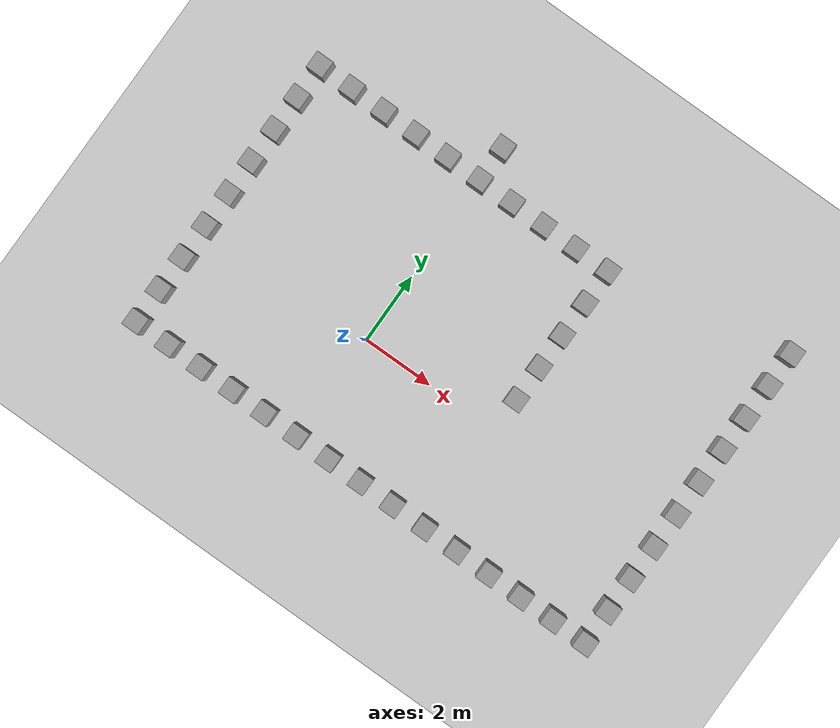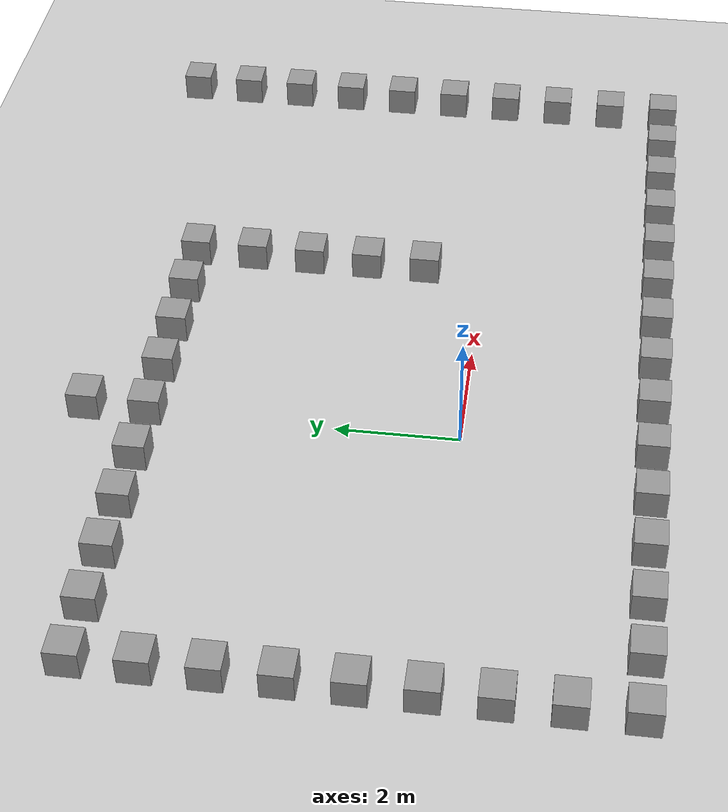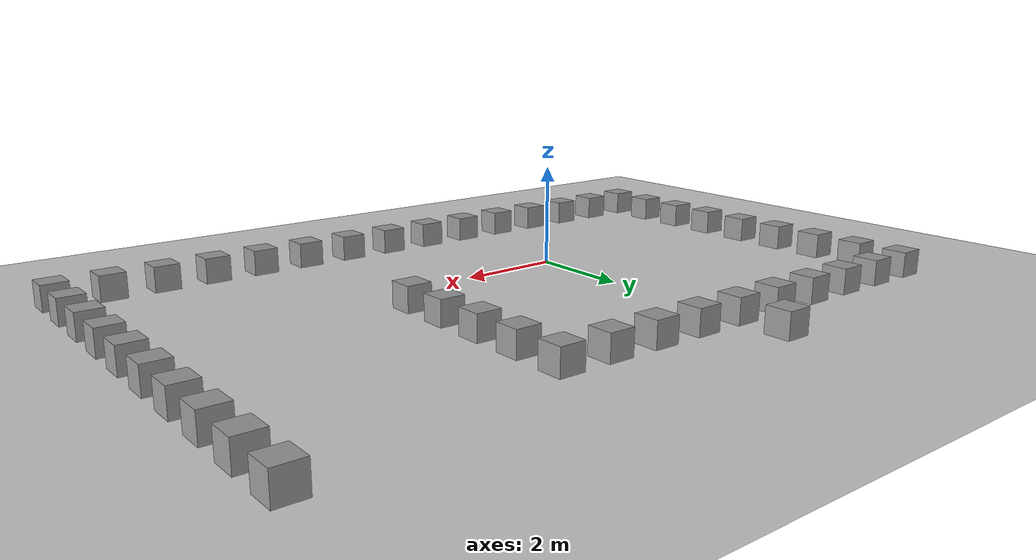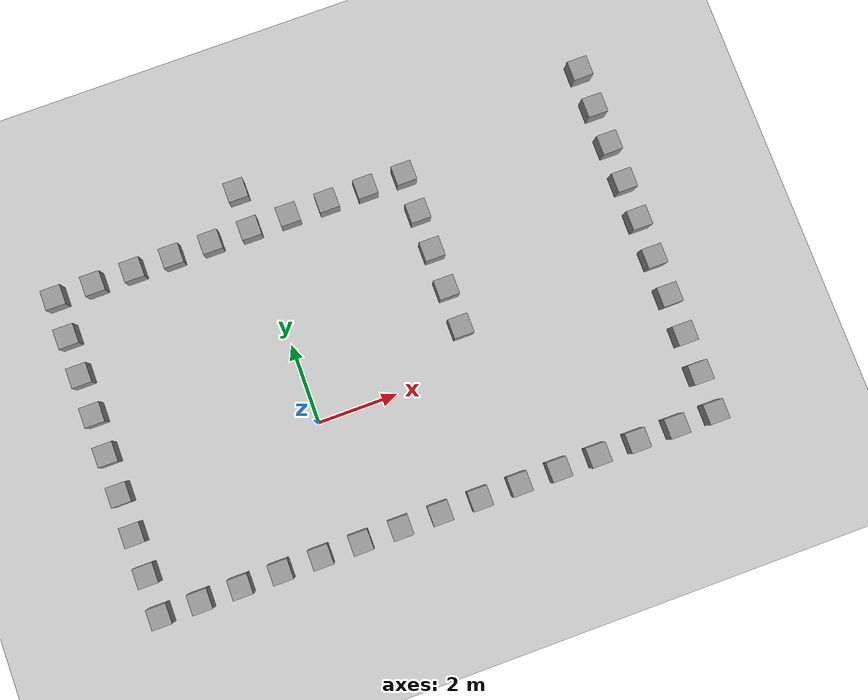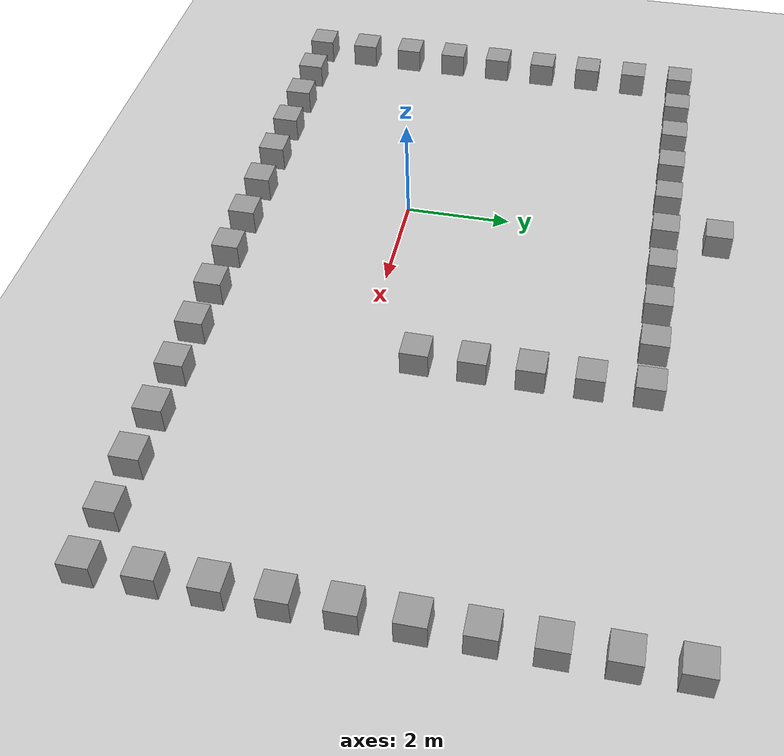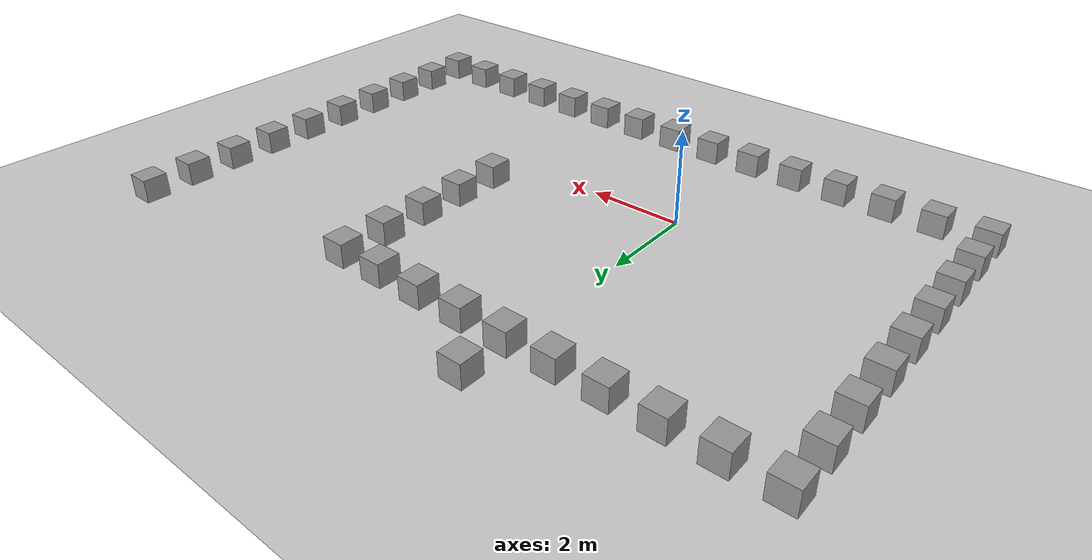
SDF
<sdf version="1.4">
 <world name="default">
  <model name="ground_plane">
   <static>1</static>
   <link name="link">
    <collision name="collision">
     <geometry><plane><normal>0 0 1</normal><size>100 100</size></plane></geometry>
     <surface><friction><ode><mu>100</mu><mu2>50</mu2></ode></friction></surface>
    </collision>
    <visual name="visual">
     <cast_shadows>0</cast_shadows>
     <geometry><plane><normal>0 0 1</normal><size>100 100</size></plane></geometry>
     <material>
      <script><uri>file://media/materials/scripts/gazebo.material</uri><name>Gazebo/Grey</name></script>
     </material>
    </visual>
    <velocity_decay><linear>0</linear><angular>0</angular></velocity_decay>
   </link>
  </model>
  <model name="unit_box_1">
   <pose>-5 5 0.25 0 -0 0</pose>
   <static>true</static>
   <link name="link">
    <inertial>
     <mass>1</mass>
     <inertia><ixx>1</ixx><ixy>0</ixy><ixz>0</ixz><iyy>1</iyy><iyz>0</iyz><izz>1</izz></inertia>
    </inertial>
    <collision name="collision"><geometry><box><size>0.5 0.5 0.5</size></box></geometry></collision>
    <visual name="visual">
     <geometry><box><size>0.5 0.5 0.5</size></box></geometry>
     <material>
      <script><uri>file://media/materials/scripts/gazebo.material</uri><name>Gazebo/Grey</name></script>
     </material>
    </visual>
    <velocity_decay><linear>0</linear><angular>0</angular></velocity_decay>
   </link>
   <static>0</static>
  </model>
  <model name="unit_box_2">
   <pose>-4 5 0.25 0 -0 0</pose>
   <static>true</static>
   <link name="link">
    <inertial>
     <mass>1</mass>
     <inertia><ixx>1</ixx><ixy>0</ixy><ixz>0</ixz><iyy>1</iyy><iyz>0</iyz><izz>1</izz></inertia>
    </inertial>
    <collision name="collision"><geometry><box><size>0.5 0.5 0.5</size></box></geometry></collision>
    <visual name="visual">
     <geometry><box><size>0.5 0.5 0.5</size></box></geometry>
     <material>
      <script><uri>file://media/materials/scripts/gazebo.material</uri><name>Gazebo/Grey</name></script>
     </material>
    </visual>
    <velocity_decay><linear>0</linear><angular>0</angular></velocity_decay>
   </link>
   <static>0</static>
  </model>
  <model name="unit_box_3">
   <pose>-3 5 0.25 0 -0 0</pose>
   <static>true</static>
   <link name="link">
    <inertial>
     <mass>1</mass>
     <inertia><ixx>1</ixx><ixy>0</ixy><ixz>0</ixz><iyy>1</iyy><iyz>0</iyz><izz>1</izz></inertia>
    </inertial>
    <collision name="collision"><geometry><box><size>0.5 0.5 0.5</size></box></geometry></collision>
    <visual name="visual">
     <geometry><box><size>0.5 0.5 0.5</size></box></geometry>
     <material>
      <script><uri>file://media/materials/scripts/gazebo.material</uri><name>Gazebo/Grey</name></script>
     </material>
    </visual>
    <velocity_decay><linear>0</linear><angular>0</angular></velocity_decay>
   </link>
   <static>0</static>
  </model>
  <model name="unit_box_4">
   <pose>-2 5 0.25 0 -0 0</pose>
   <static>true</static>
   <link name="link">
    <inertial>
     <mass>1</mass>
     <inertia><ixx>1</ixx><ixy>0</ixy><ixz>0</ixz><iyy>1</iyy><iyz>0</iyz><izz>1</izz></inertia>
    </inertial>
    <collision name="collision"><geometry><box><size>0.5 0.5 0.5</size></box></geometry></collision>
    <visual name="visual">
     <geometry><box><size>0.5 0.5 0.5</size></box></geometry>
     <material>
      <script><uri>file://media/materials/scripts/gazebo.material</uri><name>Gazebo/Grey</name></script>
     </material>
    </visual>
    <velocity_decay><linear>0</linear><angular>0</angular></velocity_decay>
   </link>
   <static>0</static>
  </model>
  <model name="unit_box_5">
   <pose>-1 5 0.25 0 -0 0</pose>
   <static>true</static>
   <link name="link">
    <inertial>
     <mass>1</mass>
     <inertia><ixx>1</ixx><ixy>0</ixy><ixz>0</ixz><iyy>1</iyy><iyz>0</iyz><izz>1</izz></inertia>
    </inertial>
    <collision name="collision"><geometry><box><size>0.5 0.5 0.5</size></box></geometry></collision>
    <visual name="visual">
     <geometry><box><size>0.5 0.5 0.5</size></box></geometry>
     <material>
      <script><uri>file://media/materials/scripts/gazebo.material</uri><name>Gazebo/Grey</name></script>
     </material>
    </visual>
    <velocity_decay><linear>0</linear><angular>0</angular></velocity_decay>
   </link>
   <static>0</static>
  </model>
  <model name="unit_box_6">
   <pose>0 5 0.25 0 -0 0</pose>
   <static>true</static>
   <link name="link">
    <inertial>
     <mass>1</mass>
     <inertia><ixx>1</ixx><ixy>0</ixy><ixz>0</ixz><iyy>1</iyy><iyz>0</iyz><izz>1</izz></inertia>
    </inertial>
    <collision name="collision"><geometry><box><size>0.5 0.5 0.5</size></box></geometry></collision>
    <visual name="visual">
     <geometry><box><size>0.5 0.5 0.5</size></box></geometry>
     <material>
      <script><uri>file://media/materials/scripts/gazebo.material</uri><name>Gazebo/Grey</name></script>
     </material>
    </visual>
    <velocity_decay><linear>0</linear><angular>0</angular></velocity_decay>
   </link>
   <static>0</static>
  </model>
  <model name="unit_box_7">
   <pose>1 5 0.25 0 -0 0</pose>
   <static>true</static>
   <link name="link">
    <inertial>
     <mass>1</mass>
     <inertia><ixx>1</ixx><ixy>0</ixy><ixz>0</ixz><iyy>1</iyy><iyz>0</iyz><izz>1</izz></inertia>
    </inertial>
    <collision name="collision"><geometry><box><size>0.5 0.5 0.5</size></box></geometry></collision>
    <visual name="visual">
     <geometry><box><size>0.5 0.5 0.5</size></box></geometry>
     <material>
      <script><uri>file://media/materials/scripts/gazebo.material</uri><name>Gazebo/Grey</name></script>
     </material>
    </visual>
    <velocity_decay><linear>0</linear><angular>0</angular></velocity_decay>
   </link>
   <static>0</static>
  </model>
  <model name="unit_box_8">
   <pose>2 5 0.25 0 -0 0</pose>
   <static>true</static>
   <link name="link">
    <inertial>
     <mass>1</mass>
     <inertia><ixx>1</ixx><ixy>0</ixy><ixz>0</ixz><iyy>1</iyy><iyz>0</iyz><izz>1</izz></inertia>
    </inertial>
    <collision name="collision"><geometry><box><size>0.5 0.5 0.5</size></box></geometry></collision>
    <visual name="visual">
     <geometry><box><size>0.5 0.5 0.5</size></box></geometry>
     <material>
      <script><uri>file://media/materials/scripts/gazebo.material</uri><name>Gazebo/Grey</name></script>
     </material>
    </visual>
    <velocity_decay><linear>0</linear><angular>0</angular></velocity_decay>
   </link>
   <static>0</static>
  </model>
  <model name="unit_box_9">
   <pose>3 5 0.25 0 -0 0</pose>
   <static>true</static>
   <link name="link">
    <inertial>
     <mass>1</mass>
     <inertia><ixx>1</ixx><ixy>0</ixy><ixz>0</ixz><iyy>1</iyy><iyz>0</iyz><izz>1</izz></inertia>
    </inertial>
    <collision name="collision"><geometry><box><size>0.5 0.5 0.5</size></box></geometry></collision>
    <visual name="visual">
     <geometry><box><size>0.5 0.5 0.5</size></box></geometry>
     <material>
      <script><uri>file://media/materials/scripts/gazebo.material</uri><name>Gazebo/Grey</name></script>
     </material>
    </visual>
    <velocity_decay><linear>0</linear><angular>0</angular></velocity_decay>
   </link>
   <static>0</static>
  </model>
  <model name="unit_box_10">
   <pose>4 5 0.25 0 -0 0</pose>
   <static>true</static>
   <link name="link">
    <inertial>
     <mass>1</mass>
     <inertia><ixx>1</ixx><ixy>0</ixy><ixz>0</ixz><iyy>1</iyy><iyz>0</iyz><izz>1</izz></inertia>
    </inertial>
    <collision name="collision"><geometry><box><size>0.5 0.5 0.5</size></box></geometry></collision>
    <visual name="visual">
     <geometry><box><size>0.5 0.5 0.5</size></box></geometry>
     <material>
      <script><uri>file://media/materials/scripts/gazebo.material</uri><name>Gazebo/Grey</name></script>
     </material>
    </visual>
    <velocity_decay><linear>0</linear><angular>0</angular></velocity_decay>
   </link>
   <static>0</static>
  </model>
  <model name="unit_box_11">
   <pose>4 4 0.25 0 -0 0</pose>
   <static>true</static>
   <link name="link">
    <inertial>
     <mass>1</mass>
     <inertia><ixx>1</ixx><ixy>0</ixy><ixz>0</ixz><iyy>1</iyy><iyz>0</iyz><izz>1</izz></inertia>
    </inertial>
    <collision name="collision"><geometry><box><size>0.5 0.5 0.5</size></box></geometry></collision>
    <visual name="visual">
     <geometry><box><size>0.5 0.5 0.5</size></box></geometry>
     <material>
      <script><uri>file://media/materials/scripts/gazebo.material</uri><name>Gazebo/Grey</name></script>
     </material>
    </visual>
    <velocity_decay><linear>0</linear><angular>0</angular></velocity_decay>
   </link>
   <static>0</static>
  </model>
  <model name="unit_box_12">
   <pose>4 3 0.25 0 -0 0</pose>
   <static>true</static>
   <link name="link">
    <inertial>
     <mass>1</mass>
     <inertia><ixx>1</ixx><ixy>0</ixy><ixz>0</ixz><iyy>1</iyy><iyz>0</iyz><izz>1</izz></inertia>
    </inertial>
    <collision name="collision"><geometry><box><size>0.5 0.5 0.5</size></box></geometry></collision>
    <visual name="visual">
     <geometry><box><size>0.5 0.5 0.5</size></box></geometry>
     <material>
      <script><uri>file://media/materials/scripts/gazebo.material</uri><name>Gazebo/Grey</name></script>
     </material>
    </visual>
    <velocity_decay><linear>0</linear><angular>0</angular></velocity_decay>
   </link>
   <static>0</static>
  </model>
  <model name="unit_box_13">
   <pose>4 2 0.25 0 -0 0</pose>
   <static>true</static>
   <link name="link">
    <inertial>
     <mass>1</mass>
     <inertia><ixx>1</ixx><ixy>0</ixy><ixz>0</ixz><iyy>1</iyy><iyz>0</iyz><izz>1</izz></inertia>
    </inertial>
    <collision name="collision"><geometry><box><size>0.5 0.5 0.5</size></box></geometry></collision>
    <visual name="visual">
     <geometry><box><size>0.5 0.5 0.5</size></box></geometry>
     <material>
      <script><uri>file://media/materials/scripts/gazebo.material</uri><name>Gazebo/Grey</name></script>
     </material>
    </visual>
    <velocity_decay><linear>0</linear><angular>0</angular></velocity_decay>
   </link>
   <static>0</static>
  </model>
  <model name="unit_box_14">
   <pose>4 1 0.25 0 -0 0</pose>
   <static>true</static>
   <link name="link">
    <inertial>
     <mass>1</mass>
     <inertia><ixx>1</ixx><ixy>0</ixy><ixz>0</ixz><iyy>1</iyy><iyz>0</iyz><izz>1</izz></inertia>
    </inertial>
    <collision name="collision"><geometry><box><size>0.5 0.5 0.5</size></box></geometry></collision>
    <visual name="visual">
     <geometry><box><size>0.5 0.5 0.5</size></box></geometry>
     <material>
      <script><uri>file://media/materials/scripts/gazebo.material</uri><name>Gazebo/Grey</name></script>
     </material>
    </visual>
    <velocity_decay><linear>0</linear><angular>0</angular></velocity_decay>
   </link>
   <static>0</static>
  </model>
  <model name="unit_box_15">
   <pose>-1 -3 0.25 0 -0 0</pose>
   <static>true</static>
   <link name="link">
    <inertial>
     <mass>1</mass>
     <inertia><ixx>1</ixx><ixy>0</ixy><ixz>0</ixz><iyy>1</iyy><iyz>0</iyz><izz>1</izz></inertia>
    </inertial>
    <collision name="collision"><geometry><box><size>0.5 0.5 0.5</size></box></geometry></collision>
    <visual name="visual">
     <geometry><box><size>0.5 0.5 0.5</size></box></geometry>
     <material>
      <script><uri>file://media/materials/scripts/gazebo.material</uri><name>Gazebo/Grey</name></script>
     </material>
    </visual>
    <velocity_decay><linear>0</linear><angular>0</angular></velocity_decay>
   </link>
   <static>0</static>
  </model>
  <model name="unit_box_16">
   <pose>0 -3 0.25 0 -0 0</pose>
   <static>true</static>
   <link name="link">
    <inertial>
     <mass>1</mass>
     <inertia><ixx>1</ixx><ixy>0</ixy><ixz>0</ixz><iyy>1</iyy><iyz>0</iyz><izz>1</izz></inertia>
    </inertial>
    <collision name="collision"><geometry><box><size>0.5 0.5 0.5</size></box></geometry></collision>
    <visual name="visual">
     <geometry><box><size>0.5 0.5 0.5</size></box></geometry>
     <material>
      <script><uri>file://media/materials/scripts/gazebo.material</uri><name>Gazebo/Grey</name></script>
     </material>
    </visual>
    <velocity_decay><linear>0</linear><angular>0</angular></velocity_decay>
   </link>
   <static>0</static>
  </model>
  <model name="unit_box_17">
   <pose>1 -3 0.25 0 -0 0</pose>
   <static>true</static>
   <link name="link">
    <inertial>
     <mass>1</mass>
     <inertia><ixx>1</ixx><ixy>0</ixy><ixz>0</ixz><iyy>1</iyy><iyz>0</iyz><izz>1</izz></inertia>
    </inertial>
    <collision name="collision"><geometry><box><size>0.5 0.5 0.5</size></box></geometry></collision>
    <visual name="visual">
     <geometry><box><size>0.5 0.5 0.5</size></box></geometry>
     <material>
      <script><uri>file://media/materials/scripts/gazebo.material</uri><name>Gazebo/Grey</name></script>
     </material>
    </visual>
    <velocity_decay><linear>0</linear><angular>0</angular></velocity_decay>
   </link>
   <static>0</static>
  </model>
  <model name="unit_box_18">
   <pose>2 -3 0.25 0 -0 0</pose>
   <static>true</static>
   <link name="link">
    <inertial>
     <mass>1</mass>
     <inertia><ixx>1</ixx><ixy>0</ixy><ixz>0</ixz><iyy>1</iyy><iyz>0</iyz><izz>1</izz></inertia>
    </inertial>
    <collision name="collision"><geometry><box><size>0.5 0.5 0.5</size></box></geometry></collision>
    <visual name="visual">
     <geometry><box><size>0.5 0.5 0.5</size></box></geometry>
     <material>
      <script><uri>file://media/materials/scripts/gazebo.material</uri><name>Gazebo/Grey</name></script>
     </material>
    </visual>
    <velocity_decay><linear>0</linear><angular>0</angular></velocity_decay>
   </link>
   <static>0</static>
  </model>
  <model name="unit_box_19">
   <pose>3 -3 0.25 0 -0 0</pose>
   <static>true</static>
   <link name="link">
    <inertial>
     <mass>1</mass>
     <inertia><ixx>1</ixx><ixy>0</ixy><ixz>0</ixz><iyy>1</iyy><iyz>0</iyz><izz>1</izz></inertia>
    </inertial>
    <collision name="collision"><geometry><box><size>0.5 0.5 0.5</size></box></geometry></collision>
    <visual name="visual">
     <geometry><box><size>0.5 0.5 0.5</size></box></geometry>
     <material>
      <script><uri>file://media/materials/scripts/gazebo.material</uri><name>Gazebo/Grey</name></script>
     </material>
    </visual>
    <velocity_decay><linear>0</linear><angular>0</angular></velocity_decay>
   </link>
   <static>0</static>
  </model>
  <model name="unit_box_20">
   <pose>4 -3 0.25 0 -0 0</pose>
   <static>true</static>
   <link name="link">
    <inertial>
     <mass>1</mass>
     <inertia><ixx>1</ixx><ixy>0</ixy><ixz>0</ixz><iyy>1</iyy><iyz>0</iyz><izz>1</izz></inertia>
    </inertial>
    <collision name="collision"><geometry><box><size>0.5 0.5 0.5</size></box></geometry></collision>
    <visual name="visual">
     <geometry><box><size>0.5 0.5 0.5</size></box></geometry>
     <material>
      <script><uri>file://media/materials/scripts/gazebo.material</uri><name>Gazebo/Grey</name></script>
     </material>
    </visual>
    <velocity_decay><linear>0</linear><angular>0</angular></velocity_decay>
   </link>
   <static>0</static>
  </model>
  <model name="unit_box_21">
   <pose>5 -3 0.25 0 -0 0</pose>
   <static>true</static>
   <link name="link">
    <inertial>
     <mass>1</mass>
     <inertia><ixx>1</ixx><ixy>0</ixy><ixz>0</ixz><iyy>1</iyy><iyz>0</iyz><izz>1</izz></inertia>
    </inertial>
    <collision name="collision"><geometry><box><size>0.5 0.5 0.5</size></box></geometry></collision>
    <visual name="visual">
     <geometry><box><size>0.5 0.5 0.5</size></box></geometry>
     <material>
      <script><uri>file://media/materials/scripts/gazebo.material</uri><name>Gazebo/Grey</name></script>
     </material>
    </visual>
    <velocity_decay><linear>0</linear><angular>0</angular></velocity_decay>
   </link>
   <static>0</static>
  </model>
  <model name="unit_box_22">
   <pose>6 -3 0.25 0 -0 0</pose>
   <static>true</static>
   <link name="link">
    <inertial>
     <mass>1</mass>
     <inertia><ixx>1</ixx><ixy>0</ixy><ixz>0</ixz><iyy>1</iyy><iyz>0</iyz><izz>1</izz></inertia>
    </inertial>
    <collision name="collision"><geometry><box><size>0.5 0.5 0.5</size></box></geometry></collision>
    <visual name="visual">
     <geometry><box><size>0.5 0.5 0.5</size></box></geometry>
     <material>
      <script><uri>file://media/materials/scripts/gazebo.material</uri><name>Gazebo/Grey</name></script>
     </material>
    </visual>
    <velocity_decay><linear>0</linear><angular>0</angular></velocity_decay>
   </link>
   <static>0</static>
  </model>
  <model name="unit_box_23">
   <pose>7 -3 0.25 0 -0 0</pose>
   <static>true</static>
   <link name="link">
    <inertial>
     <mass>1</mass>
     <inertia><ixx>1</ixx><ixy>0</ixy><ixz>0</ixz><iyy>1</iyy><iyz>0</iyz><izz>1</izz></inertia>
    </inertial>
    <collision name="collision"><geometry><box><size>0.5 0.5 0.5</size></box></geometry></collision>
    <visual name="visual">
     <geometry><box><size>0.5 0.5 0.5</size></box></geometry>
     <material>
      <script><uri>file://media/materials/scripts/gazebo.material</uri><name>Gazebo/Grey</name></script>
     </material>
    </visual>
    <velocity_decay><linear>0</linear><angular>0</angular></velocity_decay>
   </link>
   <static>0</static>
  </model>
  <model name="unit_box_24">
   <pose>8 -3 0.25 0 -0 0</pose>
   <static>true</static>
   <link name="link">
    <inertial>
     <mass>1</mass>
     <inertia><ixx>1</ixx><ixy>0</ixy><ixz>0</ixz><iyy>1</iyy><iyz>0</iyz><izz>1</izz></inertia>
    </inertial>
    <collision name="collision"><geometry><box><size>0.5 0.5 0.5</size></box></geometry></collision>
    <visual name="visual">
     <geometry><box><size>0.5 0.5 0.5</size></box></geometry>
     <material>
      <script><uri>file://media/materials/scripts/gazebo.material</uri><name>Gazebo/Grey</name></script>
     </material>
    </visual>
    <velocity_decay><linear>0</linear><angular>0</angular></velocity_decay>
   </link>
   <static>0</static>
  </model>
  <model name="unit_box_25">
   <pose>9 -3 0.25 0 -0 0</pose>
   <static>true</static>
   <link name="link">
    <inertial>
     <mass>1</mass>
     <inertia><ixx>1</ixx><ixy>0</ixy><ixz>0</ixz><iyy>1</iyy><iyz>0</iyz><izz>1</izz></inertia>
    </inertial>
    <collision name="collision"><geometry><box><size>0.5 0.5 0.5</size></box></geometry></collision>
    <visual name="visual">
     <geometry><box><size>0.5 0.5 0.5</size></box></geometry>
     <material>
      <script><uri>file://media/materials/scripts/gazebo.material</uri><name>Gazebo/Grey</name></script>
     </material>
    </visual>
    <velocity_decay><linear>0</linear><angular>0</angular></velocity_decay>
   </link>
   <static>0</static>
  </model>
  <model name="unit_box_26">
   <pose>9 -2 0.25 0 -0 0</pose>
   <static>true</static>
   <link name="link">
    <inertial>
     <mass>1</mass>
     <inertia><ixx>1</ixx><ixy>0</ixy><ixz>0</ixz><iyy>1</iyy><iyz>0</iyz><izz>1</izz></inertia>
    </inertial>
    <collision name="collision"><geometry><box><size>0.5 0.5 0.5</size></box></geometry></collision>
    <visual name="visual">
     <geometry><box><size>0.5 0.5 0.5</size></box></geometry>
     <material>
      <script><uri>file://media/materials/scripts/gazebo.material</uri><name>Gazebo/Grey</name></script>
     </material>
    </visual>
    <velocity_decay><linear>0</linear><angular>0</angular></velocity_decay>
   </link>
   <static>0</static>
  </model>
  <model name="unit_box_27">
   <pose>9 -1 0.25 0 -0 0</pose>
   <static>true</static>
   <link name="link">
    <inertial>
     <mass>1</mass>
     <inertia><ixx>1</ixx><ixy>0</ixy><ixz>0</ixz><iyy>1</iyy><iyz>0</iyz><izz>1</izz></inertia>
    </inertial>
    <collision name="collision"><geometry><box><size>0.5 0.5 0.5</size></box></geometry></collision>
    <visual name="visual">
     <geometry><box><size>0.5 0.5 0.5</size></box></geometry>
     <material>
      <script><uri>file://media/materials/scripts/gazebo.material</uri><name>Gazebo/Grey</name></script>
     </material>
    </visual>
    <velocity_decay><linear>0</linear><angular>0</angular></velocity_decay>
   </link>
   <static>0</static>
  </model>
  <model name="unit_box_28">
   <pose>9 0 0.25 0 -0 0</pose>
   <static>true</static>
   <link name="link">
    <inertial>
     <mass>1</mass>
     <inertia><ixx>1</ixx><ixy>0</ixy><ixz>0</ixz><iyy>1</iyy><iyz>0</iyz><izz>1</izz></inertia>
    </inertial>
    <collision name="collision"><geometry><box><size>0.5 0.5 0.5</size></box></geometry></collision>
    <visual name="visual">
     <geometry><box><size>0.5 0.5 0.5</size></box></geometry>
     <material>
      <script><uri>file://media/materials/scripts/gazebo.material</uri><name>Gazebo/Grey</name></script>
     </material>
    </visual>
    <velocity_decay><linear>0</linear><angular>0</angular></velocity_decay>
   </link>
   <static>0</static>
  </model>
  <model name="unit_box_29">
   <pose>9 1 0.25 0 -0 0</pose>
   <static>true</static>
   <link name="link">
    <inertial>
     <mass>1</mass>
     <inertia><ixx>1</ixx><ixy>0</ixy><ixz>0</ixz><iyy>1</iyy><iyz>0</iyz><izz>1</izz></inertia>
    </inertial>
    <collision name="collision"><geometry><box><size>0.5 0.5 0.5</size></box></geometry></collision>
    <visual name="visual">
     <geometry><box><size>0.5 0.5 0.5</size></box></geometry>
     <material>
      <script><uri>file://media/materials/scripts/gazebo.material</uri><name>Gazebo/Grey</name></script>
     </material>
    </visual>
    <velocity_decay><linear>0</linear><angular>0</angular></velocity_decay>
   </link>
   <static>0</static>
  </model>
  <model name="unit_box_30">
   <pose>9 2 0.25 0 -0 0</pose>
   <static>true</static>
   <link name="link">
    <inertial>
     <mass>1</mass>
     <inertia><ixx>1</ixx><ixy>0</ixy><ixz>0</ixz><iyy>1</iyy><iyz>0</iyz><izz>1</izz></inertia>
    </inertial>
    <collision name="collision"><geometry><box><size>0.5 0.5 0.5</size></box></geometry></collision>
    <visual name="visual">
     <geometry><box><size>0.5 0.5 0.5</size></box></geometry>
     <material>
      <script><uri>file://media/materials/scripts/gazebo.material</uri><name>Gazebo/Grey</name></script>
     </material>
    </visual>
    <velocity_decay><linear>0</linear><angular>0</angular></velocity_decay>
   </link>
   <static>0</static>
  </model>
  <model name="unit_box_31">
   <pose>9 3 0.25 0 -0 0</pose>
   <static>true</static>
   <link name="link">
    <inertial>
     <mass>1</mass>
     <inertia><ixx>1</ixx><ixy>0</ixy><ixz>0</ixz><iyy>1</iyy><iyz>0</iyz><izz>1</izz></inertia>
    </inertial>
    <collision name="collision"><geometry><box><size>0.5 0.5 0.5</size></box></geometry></collision>
    <visual name="visual">
     <geometry><box><size>0.5 0.5 0.5</size></box></geometry>
     <material>
      <script><uri>file://media/materials/scripts/gazebo.material</uri><name>Gazebo/Grey</name></script>
     </material>
    </visual>
    <velocity_decay><linear>0</linear><angular>0</angular></velocity_decay>
   </link>
   <static>0</static>
  </model>
  <model name="unit_box_32">
   <pose>9 4 0.25 0 -0 0</pose>
   <static>true</static>
   <link name="link">
    <inertial>
     <mass>1</mass>
     <inertia><ixx>1</ixx><ixy>0</ixy><ixz>0</ixz><iyy>1</iyy><iyz>0</iyz><izz>1</izz></inertia>
    </inertial>
    <collision name="collision"><geometry><box><size>0.5 0.5 0.5</size></box></geometry></collision>
    <visual name="visual">
     <geometry><box><size>0.5 0.5 0.5</size></box></geometry>
     <material>
      <script><uri>file://media/materials/scripts/gazebo.material</uri><name>Gazebo/Grey</name></script>
     </material>
    </visual>
    <velocity_decay><linear>0</linear><angular>0</angular></velocity_decay>
   </link>
   <static>0</static>
  </model>
  <model name="unit_box_33">
   <pose>9 5 0.25 0 -0 0</pose>
   <static>true</static>
   <link name="link">
    <inertial>
     <mass>1</mass>
     <inertia><ixx>1</ixx><ixy>0</ixy><ixz>0</ixz><iyy>1</iyy><iyz>0</iyz><izz>1</izz></inertia>
    </inertial>
    <collision name="collision"><geometry><box><size>0.5 0.5 0.5</size></box></geometry></collision>
    <visual name="visual">
     <geometry><box><size>0.5 0.5 0.5</size></box></geometry>
     <material>
      <script><uri>file://media/materials/scripts/gazebo.material</uri><name>Gazebo/Grey</name></script>
     </material>
    </visual>
    <velocity_decay><linear>0</linear><angular>0</angular></velocity_decay>
   </link>
   <static>0</static>
  </model>
  <model name="unit_box_34">
   <pose>9 6 0.25 0 -0 0</pose>
   <static>true</static>
   <link name="link">
    <inertial>
     <mass>1</mass>
     <inertia><ixx>1</ixx><ixy>0</ixy><ixz>0</ixz><iyy>1</iyy><iyz>0</iyz><izz>1</izz></inertia>
    </inertial>
    <collision name="collision"><geometry><box><size>0.5 0.5 0.5</size></box></geometry></collision>
    <visual name="visual">
     <geometry><box><size>0.5 0.5 0.5</size></box></geometry>
     <material>
      <script><uri>file://media/materials/scripts/gazebo.material</uri><name>Gazebo/Grey</name></script>
     </material>
    </visual>
    <velocity_decay><linear>0</linear><angular>0</angular></velocity_decay>
   </link>
   <static>0</static>
  </model>
  <model name="unit_box_40">
   <pose>-5 4 0.25 0 -0 0</pose>
   <static>true</static>
   <link name="link">
    <inertial>
     <mass>1</mass>
     <inertia><ixx>1</ixx><ixy>0</ixy><ixz>0</ixz><iyy>1</iyy><iyz>0</iyz><izz>1</izz></inertia>
    </inertial>
    <collision name="collision"><geometry><box><size>0.5 0.5 0.5</size></box></geometry></collision>
    <visual name="visual">
     <geometry><box><size>0.5 0.5 0.5</size></box></geometry>
     <material>
      <script><uri>file://media/materials/scripts/gazebo.material</uri><name>Gazebo/Grey</name></script>
     </material>
    </visual>
    <velocity_decay><linear>0</linear><angular>0</angular></velocity_decay>
   </link>
   <static>0</static>
  </model>
  <model name="unit_box_41">
   <pose>-5 3 0.25 0 -0 0</pose>
   <static>true</static>
   <link name="link">
    <inertial>
     <mass>1</mass>
     <inertia><ixx>1</ixx><ixy>0</ixy><ixz>0</ixz><iyy>1</iyy><iyz>0</iyz><izz>1</izz></inertia>
    </inertial>
    <collision name="collision"><geometry><box><size>0.5 0.5 0.5</size></box></geometry></collision>
    <visual name="visual">
     <geometry><box><size>0.5 0.5 0.5</size></box></geometry>
     <material>
      <script><uri>file://media/materials/scripts/gazebo.material</uri><name>Gazebo/Grey</name></script>
     </material>
    </visual>
    <velocity_decay><linear>0</linear><angular>0</angular></velocity_decay>
   </link>
   <static>0</static>
  </model>
  <model name="unit_box_42">
   <pose>-5 2 0.25 0 -0 0</pose>
   <static>true</static>
   <link name="link">
    <inertial>
     <mass>1</mass>
     <inertia><ixx>1</ixx><ixy>0</ixy><ixz>0</ixz><iyy>1</iyy><iyz>0</iyz><izz>1</izz></inertia>
    </inertial>
    <collision name="collision"><geometry><box><size>0.5 0.5 0.5</size></box></geometry></collision>
    <visual name="visual">
     <geometry><box><size>0.5 0.5 0.5</size></box></geometry>
     <material>
      <script><uri>file://media/materials/scripts/gazebo.material</uri><name>Gazebo/Grey</name></script>
     </material>
    </visual>
    <velocity_decay><linear>0</linear><angular>0</angular></velocity_decay>
   </link>
   <static>0</static>
  </model>
  <model name="unit_box_43">
   <pose>-5 1 0.25 0 -0 0</pose>
   <static>true</static>
   <link name="link">
    <inertial>
     <mass>1</mass>
     <inertia><ixx>1</ixx><ixy>0</ixy><ixz>0</ixz><iyy>1</iyy><iyz>0</iyz><izz>1</izz></inertia>
    </inertial>
    <collision name="collision"><geometry><box><size>0.5 0.5 0.5</size></box></geometry></collision>
    <visual name="visual">
     <geometry><box><size>0.5 0.5 0.5</size></box></geometry>
     <material>
      <script><uri>file://media/materials/scripts/gazebo.material</uri><name>Gazebo/Grey</name></script>
     </material>
    </visual>
    <velocity_decay><linear>0</linear><angular>0</angular></velocity_decay>
   </link>
   <static>0</static>
  </model>
  <model name="unit_box_44">
   <pose>-5 0 0.25 0 -0 0</pose>
   <static>true</static>
   <link name="link">
    <inertial>
     <mass>1</mass>
     <inertia><ixx>1</ixx><ixy>0</ixy><ixz>0</ixz><iyy>1</iyy><iyz>0</iyz><izz>1</izz></inertia>
    </inertial>
    <collision name="collision"><geometry><box><size>0.5 0.5 0.5</size></box></geometry></collision>
    <visual name="visual">
     <geometry><box><size>0.5 0.5 0.5</size></box></geometry>
     <material>
      <script><uri>file://media/materials/scripts/gazebo.material</uri><name>Gazebo/Grey</name></script>
     </material>
    </visual>
    <velocity_decay><linear>0</linear><angular>0</angular></velocity_decay>
   </link>
   <static>0</static>
  </model>
  <model name="unit_box_45">
   <pose>-5 -1 0.25 0 -0 0</pose>
   <static>true</static>
   <link name="link">
    <inertial>
     <mass>1</mass>
     <inertia><ixx>1</ixx><ixy>0</ixy><ixz>0</ixz><iyy>1</iyy><iyz>0</iyz><izz>1</izz></inertia>
    </inertial>
    <collision name="collision"><geometry><box><size>0.5 0.5 0.5</size></box></geometry></collision>
    <visual name="visual">
     <geometry><box><size>0.5 0.5 0.5</size></box></geometry>
     <material>
      <script><uri>file://media/materials/scripts/gazebo.material</uri><name>Gazebo/Grey</name></script>
     </material>
    </visual>
    <velocity_decay><linear>0</linear><angular>0</angular></velocity_decay>
   </link>
   <static>0</static>
  </model>
  <model name="unit_box_46">
   <pose>-5 -2 0.25 0 -0 0</pose>
   <static>true</static>
   <link name="link">
    <inertial>
     <mass>1</mass>
     <inertia><ixx>1</ixx><ixy>0</ixy><ixz>0</ixz><iyy>1</iyy><iyz>0</iyz><izz>1</izz></inertia>
    </inertial>
    <collision name="collision"><geometry><box><size>0.5 0.5 0.5</size></box></geometry></collision>
    <visual name="visual">
     <geometry><box><size>0.5 0.5 0.5</size></box></geometry>
     <material>
      <script><uri>file://media/materials/scripts/gazebo.material</uri><name>Gazebo/Grey</name></script>
     </material>
    </visual>
    <velocity_decay><linear>0</linear><angular>0</angular></velocity_decay>
   </link>
   <static>0</static>
  </model>
  <model name="unit_box_47">
   <pose>-5 -3 0.25 0 -0 0</pose>
   <static>true</static>
   <link name="link">
    <inertial>
     <mass>1</mass>
     <inertia><ixx>1</ixx><ixy>0</ixy><ixz>0</ixz><iyy>1</iyy><iyz>0</iyz><izz>1</izz></inertia>
    </inertial>
    <collision name="collision"><geometry><box><size>0.5 0.5 0.5</size></box></geometry></collision>
    <visual name="visual">
     <geometry><box><size>0.5 0.5 0.5</size></box></geometry>
     <material>
      <script><uri>file://media/materials/scripts/gazebo.material</uri><name>Gazebo/Grey</name></script>
     </material>
    </visual>
    <velocity_decay><linear>0</linear><angular>0</angular></velocity_decay>
   </link>
   <static>0</static>
  </model>
  <model name="unit_box_48">
   <pose>-4 -3 0.25 0 -0 0</pose>
   <static>true</static>
   <link name="link">
    <inertial>
     <mass>1</mass>
     <inertia><ixx>1</ixx><ixy>0</ixy><ixz>0</ixz><iyy>1</iyy><iyz>0</iyz><izz>1</izz></inertia>
    </inertial>
    <collision name="collision"><geometry><box><size>0.5 0.5 0.5</size></box></geometry></collision>
    <visual name="visual">
     <geometry><box><size>0.5 0.5 0.5</size></box></geometry>
     <material>
      <script><uri>file://media/materials/scripts/gazebo.material</uri><name>Gazebo/Grey</name></script>
     </material>
    </visual>
    <velocity_decay><linear>0</linear><angular>0</angular></velocity_decay>
   </link>
   <static>0</static>
  </model>
  <model name="unit_box_49">
   <pose>-3 -3 0.25 0 -0 0</pose>
   <static>true</static>
   <link name="link">
    <inertial>
     <mass>1</mass>
     <inertia><ixx>1</ixx><ixy>0</ixy><ixz>0</ixz><iyy>1</iyy><iyz>0</iyz><izz>1</izz></inertia>
    </inertial>
    <collision name="collision"><geometry><box><size>0.5 0.5 0.5</size></box></geometry></collision>
    <visual name="visual">
     <geometry><box><size>0.5 0.5 0.5</size></box></geometry>
     <material>
      <script><uri>file://media/materials/scripts/gazebo.material</uri><name>Gazebo/Grey</name></script>
     </material>
    </visual>
    <velocity_decay><linear>0</linear><angular>0</angular></velocity_decay>
   </link>
   <static>0</static>
  </model>
  <model name="unit_box_50">
   <pose>-2 -3 0.25 0 -0 0</pose>
   <static>true</static>
   <link name="link">
    <inertial>
     <mass>1</mass>
     <inertia><ixx>1</ixx><ixy>0</ixy><ixz>0</ixz><iyy>1</iyy><iyz>0</iyz><izz>1</izz></inertia>
    </inertial>
    <collision name="collision"><geometry><box><size>0.5 0.5 0.5</size></box></geometry></collision>
    <visual name="visual">
     <geometry><box><size>0.5 0.5 0.5</size></box></geometry>
     <material>
      <script><uri>file://media/materials/scripts/gazebo.material</uri><name>Gazebo/Grey</name></script>
     </material>
    </visual>
    <velocity_decay><linear>0</linear><angular>0</angular></velocity_decay>
   </link>
   <static>0</static>
  </model>
  <model name="unit_box_57">
   <pose>0 6 0.25 0 -0 0</pose>
   <static>true</static>
   <link name="link">
    <inertial>
     <mass>1</mass>
     <inertia><ixx>1</ixx><ixy>0</ixy><ixz>0</ixz><iyy>1</iyy><iyz>0</iyz><izz>1</izz></inertia>
    </inertial>
    <collision name="collision"><geometry><box><size>0.5 0.5 0.5</size></box></geometry></collision>
    <visual name="visual">
     <geometry><box><size>0.5 0.5 0.5</size></box></geometry>
     <material>
      <script><uri>file://media/materials/scripts/gazebo.material</uri><name>Gazebo/Grey</name></script>
     </material>
    </visual>
    <velocity_decay><linear>0</linear><angular>0</angular></velocity_decay>
   </link>
   <static>0</static>
  </model>
 </world>
</sdf>
